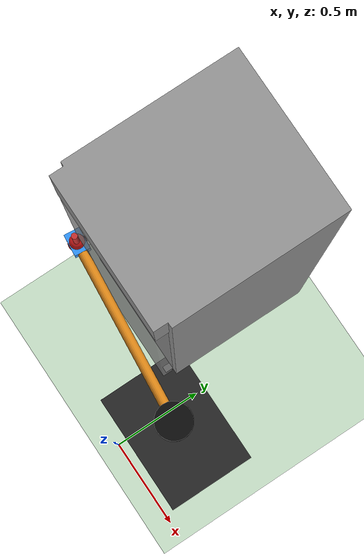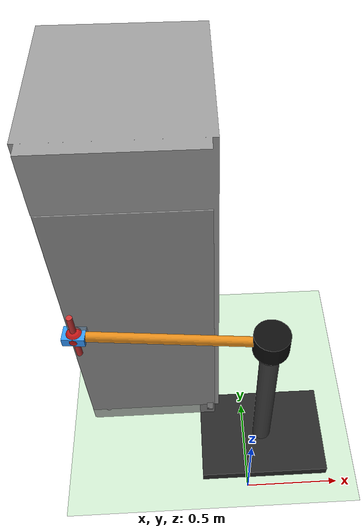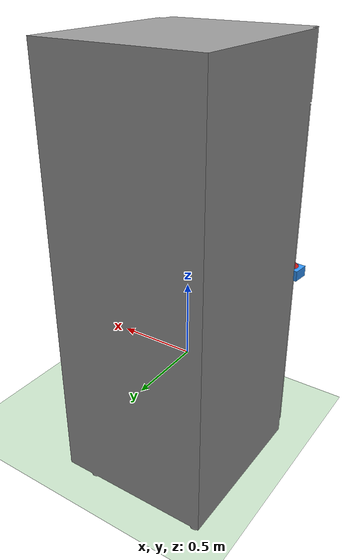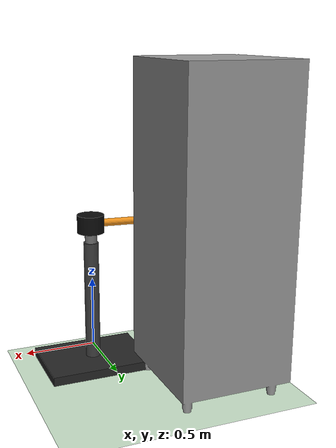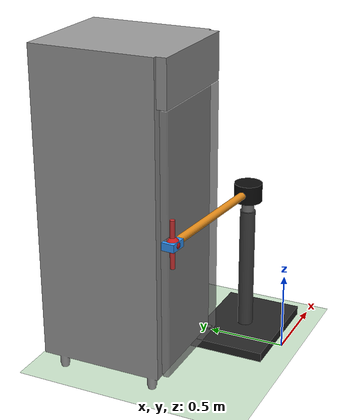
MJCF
<mujoco model="Test_electrolux_mechanical_rotary_system">

  <compiler angle="radian"/>

  <option timestep="0.002" gravity="0 0 -9.81"/>

  <asset>
    <mesh name="frigo_mesh" file="electrolux_corpo.obj"/>
    <mesh name="porta_mesh" file="electrolux_porta.obj"/>
  </asset>

  <worldbody>
    <geom name="pavimento" type="plane" size="5 5 0.1" rgba="0.8 0.9 0.8 1"/>
    <light directional="true" diffuse="0.8 0.8 0.8" specular="0.2 0.2 0.2" pos="0 0 5" dir="0 0 -1" castshadow="false"/>

    <body name="sistema_meccanico_dedicato" pos="0.1 0.3 0">
      <geom name="base_meccanica" type="box" pos="0 0 0.03" size="0.35 0.25 0.03" rgba="0.15 0.15 0.15 1" contype="0" conaffinity="0"/>
      <geom name="colonna_fissa" type="cylinder" pos="0 0 0.45" size="0.05 0.42" rgba="0.25 0.25 0.25 1" contype="0" conaffinity="0"/>

      <body name="colonna_regolabile" pos="0 0 1.00">
        <inertial pos="0 0 -0.25" mass="4.0" diaginertia="0.08 0.08 0.02"/>
        <geom name="colonna_mobile" type="cylinder" pos="0 0 -0.25" size="0.04 0.30" rgba="0.45 0.45 0.45 1" contype="0" conaffinity="0"/>

        <body name="motoriduttore" pos="0 0 0">
          <inertial pos="0 0 0" mass="3.0" diaginertia="0.04 0.04 0.03"/>
          <geom name="motoriduttore_visual" type="cylinder" pos="0 0 0" size="0.09 0.06" rgba="0.05 0.05 0.05 1" contype="0" conaffinity="0"/>
          <site name="asse_motoriduttore" pos="0 0 0" size="0.035" rgba="0 0 1 1"/>

          <body name="braccio_rotante" pos="0 0 0" xyaxes="-0.995849 0.091023 0 -0.091023 -0.995849 0">
            <joint name="giunto_rotante" type="hinge" axis="0 0 1" range="-1.5708 1.5708" limited="true" damping="5" frictionloss="1"/>
            <inertial pos="0.465 0 0" mass="2.5" diaginertia="0.08 0.08 0.006"/>
            <geom name="braccio_guida_visual" type="capsule" fromto="0 0 0 0.94 0 0" size="0.025" rgba="0.9 0.55 0.1 1" contype="0" conaffinity="0"/>
            <site name="asse_braccio" pos="0.94 0 0" size="0.025" rgba="1 0.5 0 1"/>

            <body name="carrello_telescopico" pos="0.933876 0 0">
              <joint name="compensazione_radiale" type="slide" axis="1 0 0" range="-0.30 0.10" limited="true" damping="15" frictionloss="0.5"/>
              <inertial pos="0 0 0" mass="0.8" diaginertia="0.004 0.004 0.002"/>
              <geom name="carrello_visual" type="box" pos="0 0 0" size="0.055 0.04 0.025" rgba="0.2 0.6 1 1" contype="0" conaffinity="0"/>
              <geom name="stelo_telescopico_visual" type="capsule" fromto="-0.25 0 0 0 0 0" size="0.018" rgba="0.75 0.75 0.75 1" contype="0" conaffinity="0"/>

              <body name="giunto_allineamento" pos="0 0 0">
                <joint name="snodo_allineamento" type="ball" damping="0.1"/>
                <inertial pos="0 0 0" mass="0.4" diaginertia="0.002 0.002 0.002"/>
                <geom name="snodo_allineamento_visual" type="sphere" pos="0 0 0" size="0.035" rgba="0.1 0.6 1 1" contype="0" conaffinity="0"/>

                <body name="end_effector" pos="0 0 0">
                  <inertial pos="0 0 0" mass="0.3" diaginertia="0.001 0.001 0.001"/>
                  <geom name="end_effector_visual" type="sphere" pos="0 0 0" size="0.045" rgba="0.8 0.1 0.1 1" contype="0" conaffinity="0"/>
                  <site name="punto_presa_meccanico" pos="0 0 0" size="0.03" rgba="1 0 0 1"/>
                </body>
              </body>
            </body>
          </body>
        </body>
      </body>
    </body>

    <body name="banco_frigo" pos="-0.9 0.4 0">
      <geom type="mesh" mesh="frigo_mesh" rgba="0.6 0.6 0.6 1" contype="0" conaffinity="0"/>

      <body name="porta" pos="0 0 0">
        <joint name="giunto_porta" type="hinge" pos="0.72 0.03 0" axis="0 0 1" range="0 3.1415" limited="true" damping="2.0" frictionloss="6.206" stiffness="0" springref="0"/>
        <inertial pos="0.36 0 0.83" mass="15" diaginertia="2.0 2.0 2.45"/>
        <geom type="mesh" mesh="porta_mesh" rgba="0.6 0.6 0.6 0.8" contype="1" conaffinity="1"/>

        <body name="maniglia_body" pos="0.07 -0.015 1.0">
          <inertial pos="0 0 0" mass="0.2" diaginertia="0.001 0.001 0.001"/>
          <geom name="maniglia" type="cylinder" size="0.015 0.15" rgba="0.8 0.2 0.2 1" contype="0" conaffinity="0"/>
          <site name="target_maniglia" pos="0 0 0" size="0.025" rgba="1 0 0 0.5"/>
        </body>
      </body>
    </body>
  </worldbody>

  <equality>
    <connect name="presa_meccanica_maniglia" site1="punto_presa_meccanico" site2="target_maniglia" solimp="0.85 0.95 0.002" solref="0.03 1"/>
  </equality>

<actuator>
  <motor name="motore_motoriduttore"
         joint="giunto_rotante"
         gear="1"
         ctrllimited="true"
         ctrlrange="-150 150"/>
</actuator>

</mujoco>
